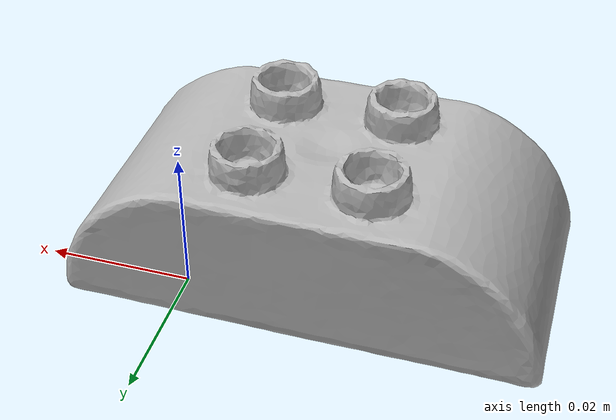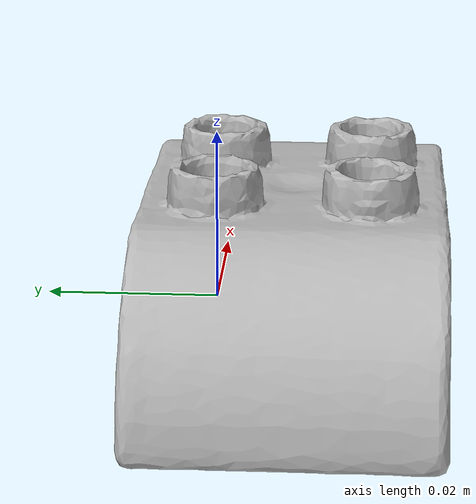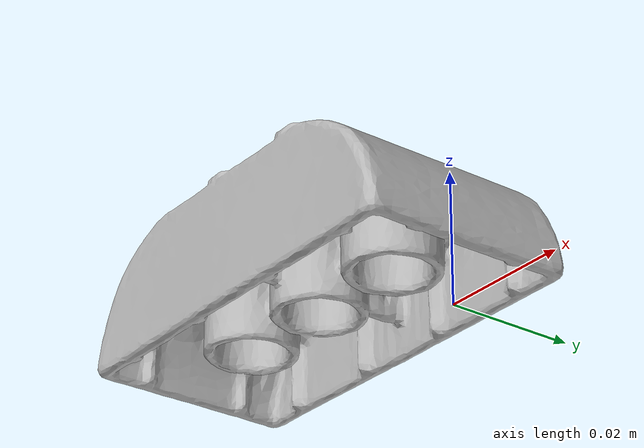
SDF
<?xml version='1.0'?>
<sdf version="1.4">
  <model name="a_lego_duplo">
    <static>false</static>
    <link name="link">
      <inertial>
        <pose>-0.01643867601045112 -0.009535832647545055 0.012146686641689842 -0.9804646714851846 -1.5656577611750397 0.9728745595586037</pose>
        <mass>1.811737478000783e-05</mass>
        <inertia>
          <ixx>6.369074670629602e-09</ixx>
          <ixy>2.1012384831650313e-25</ixy>
          <ixz>2.4033816186934367e-27</ixz>
          <iyy>5.076012341054667e-09</iyy>
          <iyz>7.551425111982631e-27</iyz>
          <izz>2.274384521997225e-09</izz>
        </inertia>
      </inertial>
      <collision name="collision">
        <geometry>
          <mesh>
            <!-- Use a downsampled mesh for collisions -->
            <uri>model://073-a_lego_duplo/google_16k/073-a_lego_duplo.obj</uri>
            </mesh>
        </geometry>
        <surface>
          <friction>
            <ode>
              <mu>0.9</mu>
              <mu2>0.9</mu2>
            </ode>
          </friction>
          <contact>
            <ode>
              <kp>1000000000000.0</kp>
              <kd>1</kd>
              <min_depth>0.0001</min_depth>
              <max_vel>0.01</max_vel>
            </ode>
          </contact>
          <bounce>
            <restitution_coefficient>0.1</restitution_coefficient>
            <threshold>1000.0</threshold>
          </bounce>
        </surface>
      </collision>
      <visual name="visual">
        <geometry>
          <mesh>
            <uri>model://073-a_lego_duplo/google_16k/073-a_lego_duplo.dae</uri>
            </mesh>
        </geometry>
      </visual>
    </link>
  </model>
</sdf>
